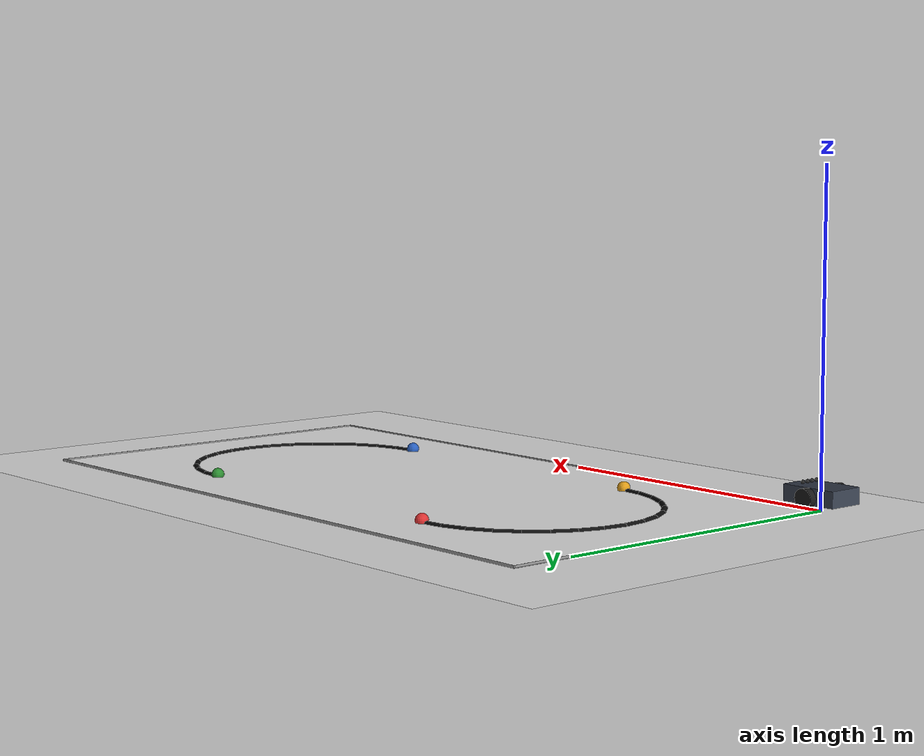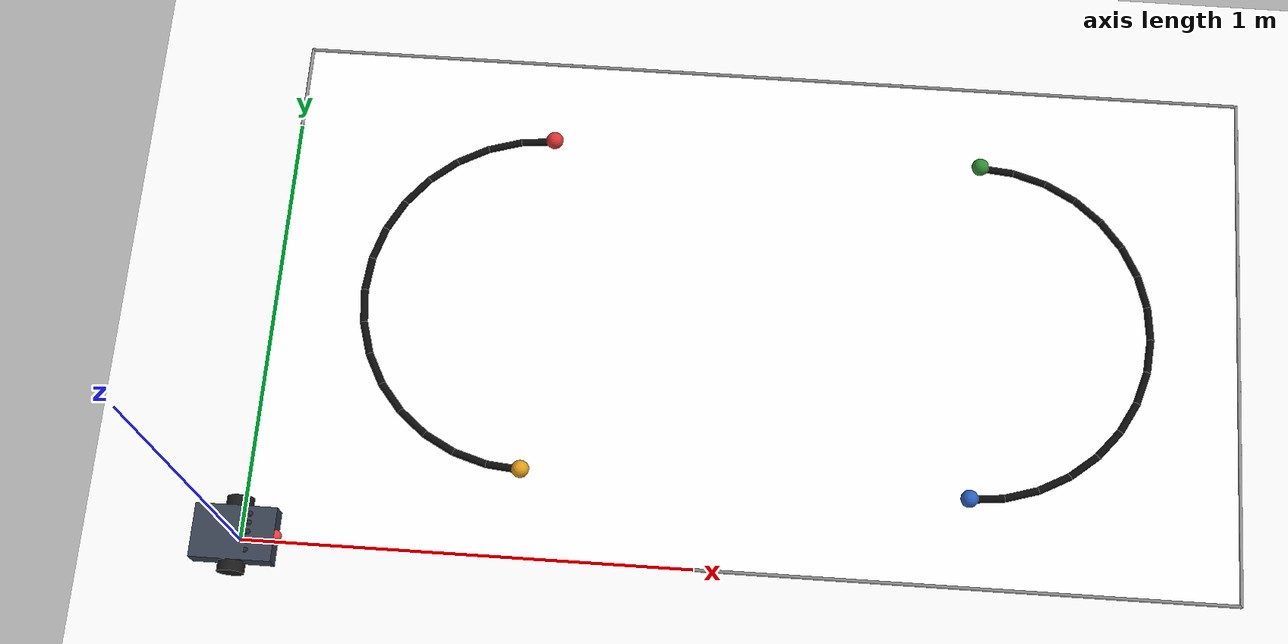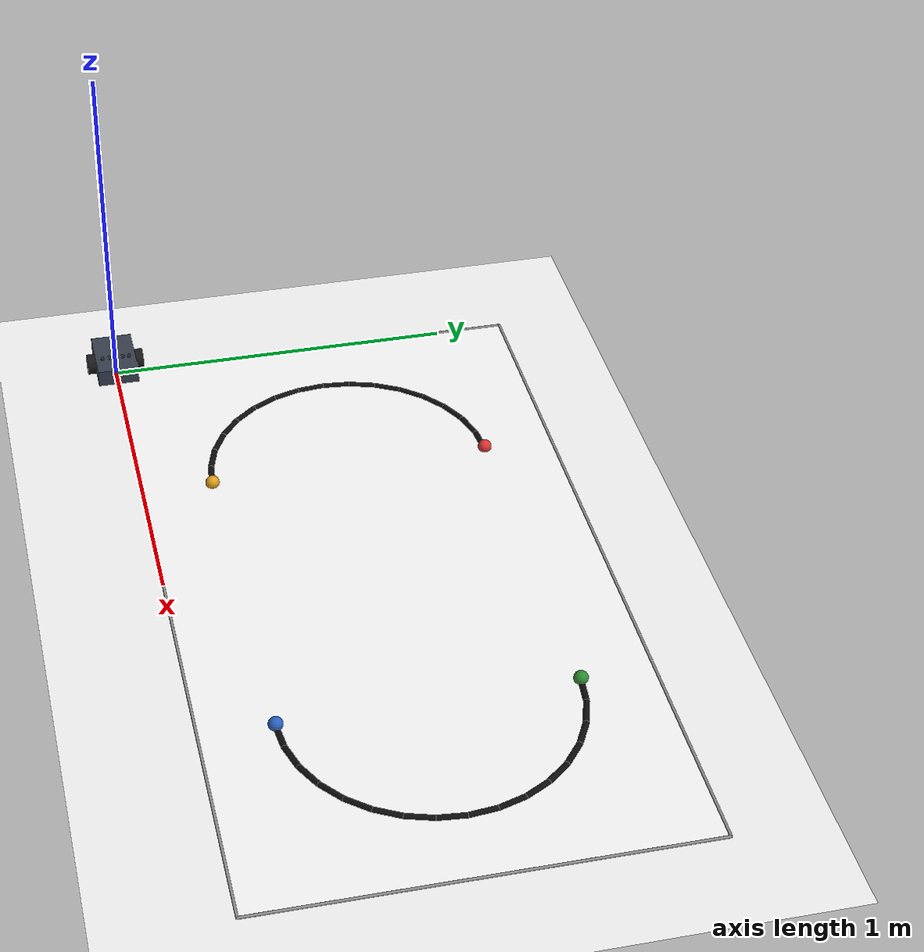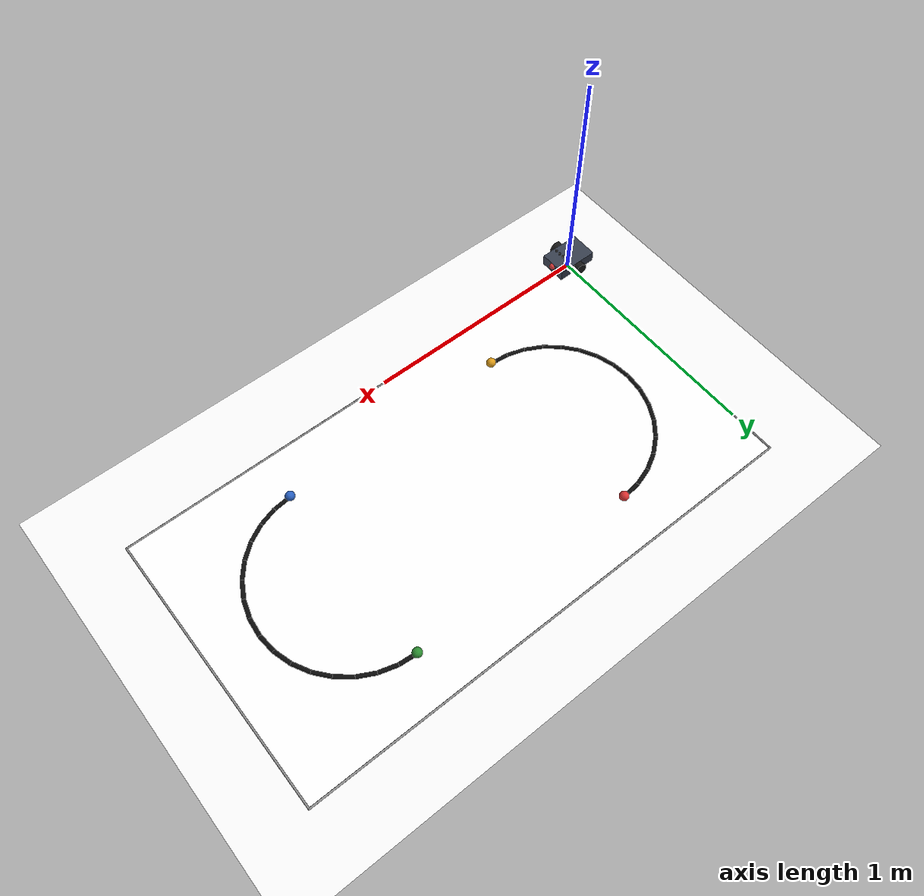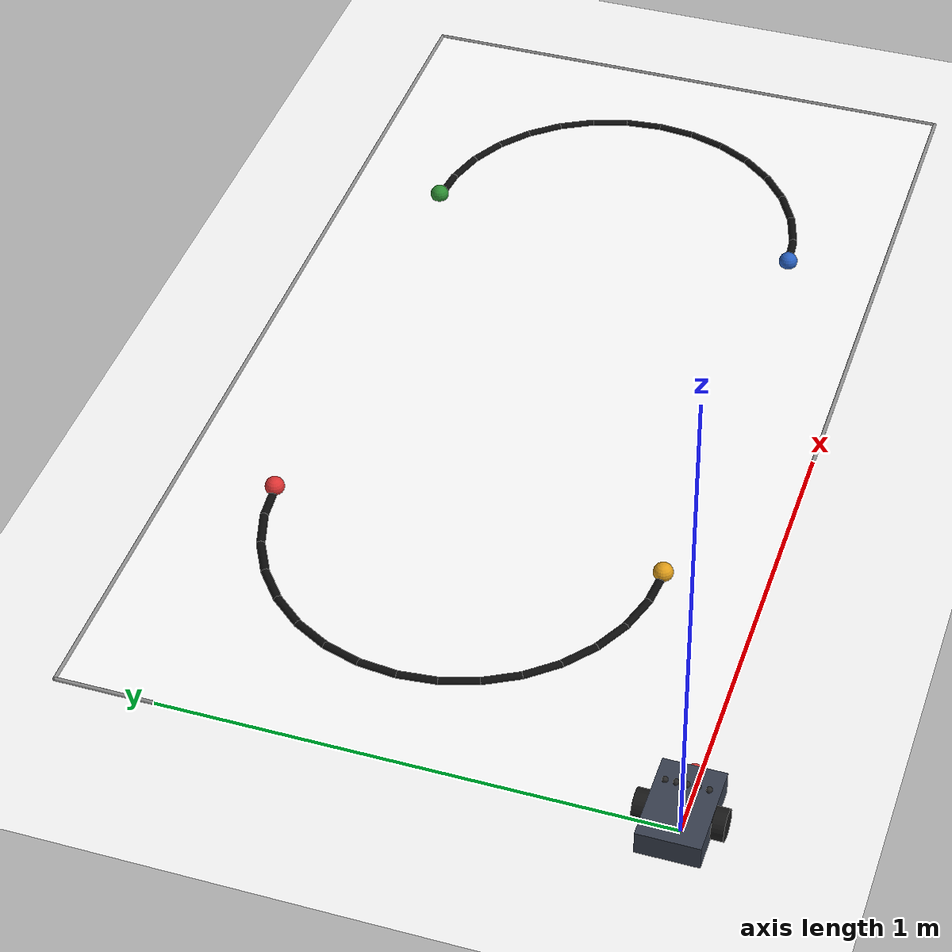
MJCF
<mujoco model="artemis_mudri_demo">
  <compiler angle="degree" coordinate="local"/>
  <option timestep="0.01" gravity="0.00 0.00 -9.81" integrator="RK4"/>
  <visual>
    <headlight ambient="0.450 0.450 0.450" diffuse="0.650 0.650 0.650" specular="0.150 0.150 0.150"/>
    <rgba haze="1.000 1.000 1.000 1.000"/>
  </visual>
  <default>
    <joint damping="0.8"/>
    <geom friction="0.8 0.1 0.1" rgba="0.880 0.900 0.920 1.000"/>
    <velocity kv="80"/>
  </default>
  <worldbody>
    <geom name="ground" type="plane" pos="1.100 0.600 0" size="3 3 0.1" rgba="0.980 0.980 0.980 1.000"/>
    <geom name="field" type="box" pos="1.100 0.600 0.001" size="1.100 0.600 0.001" rgba="1.000 1.000 1.000 1.000" contype="0" conaffinity="0"/>
    <geom name="boundary_top" type="capsule" fromto="0.000 0.000 0.002 2.200 0.000 0.002" size="0.004" rgba="0.550 0.550 0.550 1.000" contype="0" conaffinity="0"/>
    <geom name="boundary_bottom" type="capsule" fromto="0.000 1.200 0.002 2.200 1.200 0.002" size="0.004" rgba="0.550 0.550 0.550 1.000" contype="0" conaffinity="0"/>
    <geom name="boundary_left" type="capsule" fromto="0.000 0.000 0.002 0.000 1.200 0.002" size="0.004" rgba="0.550 0.550 0.550 1.000" contype="0" conaffinity="0"/>
    <geom name="boundary_right" type="capsule" fromto="2.200 0.000 0.002 2.200 1.200 0.002" size="0.004" rgba="0.550 0.550 0.550 1.000" contype="0" conaffinity="0"/>
    <geom name="left_arc_0" type="capsule" fromto="0.6000 1.0000 0.0010 0.5220 0.9923 0.0010" size="0.0090" rgba="0.050 0.050 0.050 1.000" contype="0" conaffinity="0"/>
    <geom name="left_arc_1" type="capsule" fromto="0.5220 0.9923 0.0010 0.4469 0.9696 0.0010" size="0.0090" rgba="0.050 0.050 0.050 1.000" contype="0" conaffinity="0"/>
    <geom name="left_arc_2" type="capsule" fromto="0.4469 0.9696 0.0010 0.3778 0.9326 0.0010" size="0.0090" rgba="0.050 0.050 0.050 1.000" contype="0" conaffinity="0"/>
    <geom name="left_arc_3" type="capsule" fromto="0.3778 0.9326 0.0010 0.3172 0.8828 0.0010" size="0.0090" rgba="0.050 0.050 0.050 1.000" contype="0" conaffinity="0"/>
    <geom name="left_arc_4" type="capsule" fromto="0.3172 0.8828 0.0010 0.2674 0.8222 0.0010" size="0.0090" rgba="0.050 0.050 0.050 1.000" contype="0" conaffinity="0"/>
    <geom name="left_arc_5" type="capsule" fromto="0.2674 0.8222 0.0010 0.2304 0.7531 0.0010" size="0.0090" rgba="0.050 0.050 0.050 1.000" contype="0" conaffinity="0"/>
    <geom name="left_arc_6" type="capsule" fromto="0.2304 0.7531 0.0010 0.2077 0.6780 0.0010" size="0.0090" rgba="0.050 0.050 0.050 1.000" contype="0" conaffinity="0"/>
    <geom name="left_arc_7" type="capsule" fromto="0.2077 0.6780 0.0010 0.2000 0.6000 0.0010" size="0.0090" rgba="0.050 0.050 0.050 1.000" contype="0" conaffinity="0"/>
    <geom name="left_arc_8" type="capsule" fromto="0.2000 0.6000 0.0010 0.2077 0.5220 0.0010" size="0.0090" rgba="0.050 0.050 0.050 1.000" contype="0" conaffinity="0"/>
    <geom name="left_arc_9" type="capsule" fromto="0.2077 0.5220 0.0010 0.2304 0.4469 0.0010" size="0.0090" rgba="0.050 0.050 0.050 1.000" contype="0" conaffinity="0"/>
    <geom name="left_arc_10" type="capsule" fromto="0.2304 0.4469 0.0010 0.2674 0.3778 0.0010" size="0.0090" rgba="0.050 0.050 0.050 1.000" contype="0" conaffinity="0"/>
    <geom name="left_arc_11" type="capsule" fromto="0.2674 0.3778 0.0010 0.3172 0.3172 0.0010" size="0.0090" rgba="0.050 0.050 0.050 1.000" contype="0" conaffinity="0"/>
    <geom name="left_arc_12" type="capsule" fromto="0.3172 0.3172 0.0010 0.3778 0.2674 0.0010" size="0.0090" rgba="0.050 0.050 0.050 1.000" contype="0" conaffinity="0"/>
    <geom name="left_arc_13" type="capsule" fromto="0.3778 0.2674 0.0010 0.4469 0.2304 0.0010" size="0.0090" rgba="0.050 0.050 0.050 1.000" contype="0" conaffinity="0"/>
    <geom name="left_arc_14" type="capsule" fromto="0.4469 0.2304 0.0010 0.5220 0.2077 0.0010" size="0.0090" rgba="0.050 0.050 0.050 1.000" contype="0" conaffinity="0"/>
    <geom name="left_arc_15" type="capsule" fromto="0.5220 0.2077 0.0010 0.6000 0.2000 0.0010" size="0.0090" rgba="0.050 0.050 0.050 1.000" contype="0" conaffinity="0"/>
    <geom name="right_arc_0" type="capsule" fromto="1.6000 1.0000 0.0010 1.6780 0.9923 0.0010" size="0.0090" rgba="0.050 0.050 0.050 1.000" contype="0" conaffinity="0"/>
    <geom name="right_arc_1" type="capsule" fromto="1.6780 0.9923 0.0010 1.7531 0.9696 0.0010" size="0.0090" rgba="0.050 0.050 0.050 1.000" contype="0" conaffinity="0"/>
    <geom name="right_arc_2" type="capsule" fromto="1.7531 0.9696 0.0010 1.8222 0.9326 0.0010" size="0.0090" rgba="0.050 0.050 0.050 1.000" contype="0" conaffinity="0"/>
    <geom name="right_arc_3" type="capsule" fromto="1.8222 0.9326 0.0010 1.8828 0.8828 0.0010" size="0.0090" rgba="0.050 0.050 0.050 1.000" contype="0" conaffinity="0"/>
    <geom name="right_arc_4" type="capsule" fromto="1.8828 0.8828 0.0010 1.9326 0.8222 0.0010" size="0.0090" rgba="0.050 0.050 0.050 1.000" contype="0" conaffinity="0"/>
    <geom name="right_arc_5" type="capsule" fromto="1.9326 0.8222 0.0010 1.9696 0.7531 0.0010" size="0.0090" rgba="0.050 0.050 0.050 1.000" contype="0" conaffinity="0"/>
    <geom name="right_arc_6" type="capsule" fromto="1.9696 0.7531 0.0010 1.9923 0.6780 0.0010" size="0.0090" rgba="0.050 0.050 0.050 1.000" contype="0" conaffinity="0"/>
    <geom name="right_arc_7" type="capsule" fromto="1.9923 0.6780 0.0010 2.0000 0.6000 0.0010" size="0.0090" rgba="0.050 0.050 0.050 1.000" contype="0" conaffinity="0"/>
    <geom name="right_arc_8" type="capsule" fromto="2.0000 0.6000 0.0010 1.9923 0.5220 0.0010" size="0.0090" rgba="0.050 0.050 0.050 1.000" contype="0" conaffinity="0"/>
    <geom name="right_arc_9" type="capsule" fromto="1.9923 0.5220 0.0010 1.9696 0.4469 0.0010" size="0.0090" rgba="0.050 0.050 0.050 1.000" contype="0" conaffinity="0"/>
    <geom name="right_arc_10" type="capsule" fromto="1.9696 0.4469 0.0010 1.9326 0.3778 0.0010" size="0.0090" rgba="0.050 0.050 0.050 1.000" contype="0" conaffinity="0"/>
    <geom name="right_arc_11" type="capsule" fromto="1.9326 0.3778 0.0010 1.8828 0.3172 0.0010" size="0.0090" rgba="0.050 0.050 0.050 1.000" contype="0" conaffinity="0"/>
    <geom name="right_arc_12" type="capsule" fromto="1.8828 0.3172 0.0010 1.8222 0.2674 0.0010" size="0.0090" rgba="0.050 0.050 0.050 1.000" contype="0" conaffinity="0"/>
    <geom name="right_arc_13" type="capsule" fromto="1.8222 0.2674 0.0010 1.7531 0.2304 0.0010" size="0.0090" rgba="0.050 0.050 0.050 1.000" contype="0" conaffinity="0"/>
    <geom name="right_arc_14" type="capsule" fromto="1.7531 0.2304 0.0010 1.6780 0.2077 0.0010" size="0.0090" rgba="0.050 0.050 0.050 1.000" contype="0" conaffinity="0"/>
    <geom name="right_arc_15" type="capsule" fromto="1.6780 0.2077 0.0010 1.6000 0.2000 0.0010" size="0.0090" rgba="0.050 0.050 0.050 1.000" contype="0" conaffinity="0"/>
    <site name="anchor_A" pos="0.6000 1.0000 0.0100" size="0.0200" type="sphere" rgba="0.870 0.200 0.200 1.000"/>
    <site name="anchor_B" pos="1.6000 1.0000 0.0100" size="0.0200" type="sphere" rgba="0.180 0.560 0.200 1.000"/>
    <site name="anchor_C" pos="1.6000 0.2000 0.0100" size="0.0200" type="sphere" rgba="0.160 0.380 0.760 1.000"/>
    <site name="anchor_D" pos="0.6000 0.2000 0.0100" size="0.0200" type="sphere" rgba="0.880 0.620 0.100 1.000"/>
    <body name="car" pos="0.000 0.000 0.050">
      <joint name="car_x" type="slide" axis="1 0 0"/>
      <joint name="car_y" type="slide" axis="0 1 0"/>
      <joint name="car_yaw" type="hinge" axis="0 0 1"/>
      <geom name="chassis" type="box" size="0.090 0.060 0.025" rgba="0.220 0.250 0.310 1.000" contype="0" conaffinity="0"/>
      <site name="car_nose" pos="0.0900 0.0000 0.0100" size="0.0140" type="sphere" rgba="0.900 0.250 0.250 1.000"/>
      <site name="sensor_0" pos="0.0850 -0.0400 -0.0150" size="0.0050" type="sphere" rgba="0.950 0.650 0.200 1.000"/>
      <site name="sensor_1" pos="0.0850 -0.0200 -0.0150" size="0.0050" type="sphere" rgba="0.950 0.650 0.200 1.000"/>
      <site name="sensor_2" pos="0.0850 0.0000 -0.0150" size="0.0050" type="sphere" rgba="0.950 0.650 0.200 1.000"/>
      <site name="sensor_3" pos="0.0850 0.0200 -0.0150" size="0.0050" type="sphere" rgba="0.950 0.650 0.200 1.000"/>
      <site name="sensor_4" pos="0.0850 0.0400 -0.0150" size="0.0050" type="sphere" rgba="0.950 0.650 0.200 1.000"/>
      <site name="led_0" pos="0.0350 -0.0400 0.0350" size="0.0060" type="sphere" rgba="0.160 0.160 0.160 1.000"/>
      <site name="led_1" pos="0.0350 -0.0200 0.0350" size="0.0060" type="sphere" rgba="0.160 0.160 0.160 1.000"/>
      <site name="led_2" pos="0.0350 0.0000 0.0350" size="0.0060" type="sphere" rgba="0.160 0.160 0.160 1.000"/>
      <site name="led_3" pos="0.0350 0.0200 0.0350" size="0.0060" type="sphere" rgba="0.160 0.160 0.160 1.000"/>
      <site name="led_4" pos="0.0350 0.0400 0.0350" size="0.0060" type="sphere" rgba="0.160 0.160 0.160 1.000"/>
      <body name="left_wheel" pos="0.000 0.070 -0.005">
        <geom name="left_wheel_geom" type="cylinder" size="0.030 0.014" rgba="0.100 0.100 0.100 1.000" contype="0" conaffinity="0" euler="90 0 0"/>
      </body>
      <body name="right_wheel" pos="0.000 -0.070 -0.005">
        <geom name="right_wheel_geom" type="cylinder" size="0.030 0.014" rgba="0.100 0.100 0.100 1.000" contype="0" conaffinity="0" euler="90 0 0"/>
      </body>
    </body>
  </worldbody>
  <actuator>
    <velocity name="x_drive" joint="car_x" kv="120"/>
    <velocity name="y_drive" joint="car_y" kv="120"/>
    <velocity name="yaw_drive" joint="car_yaw" kv="45"/>
  </actuator>
</mujoco>
